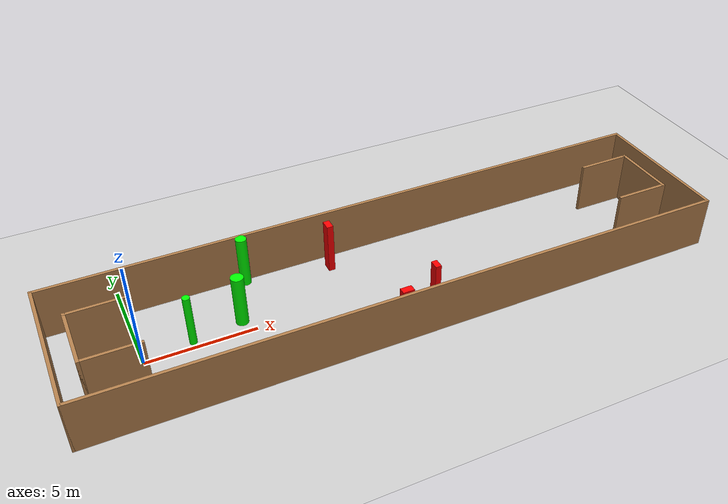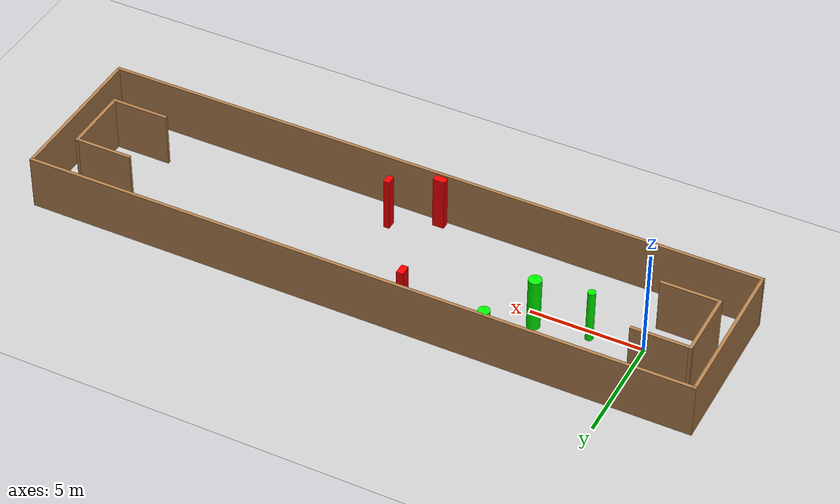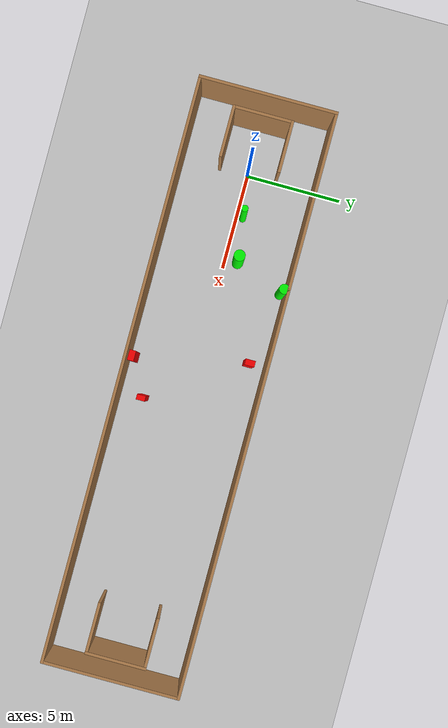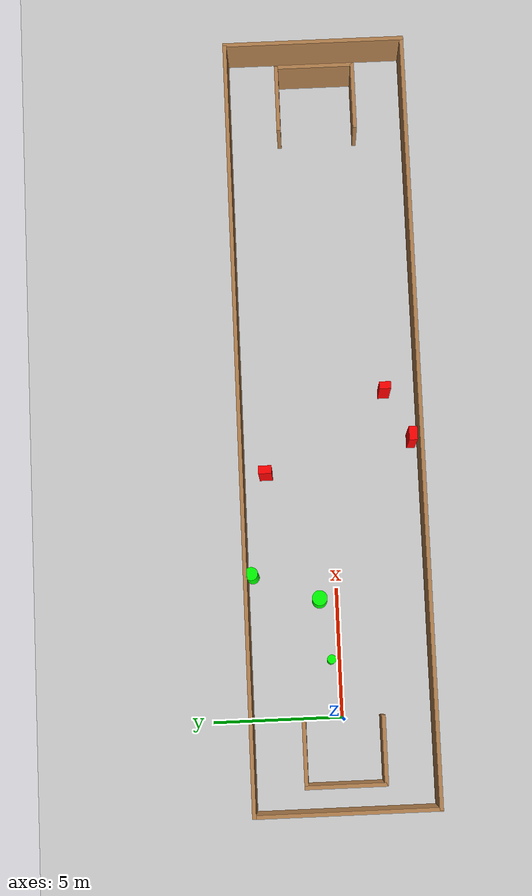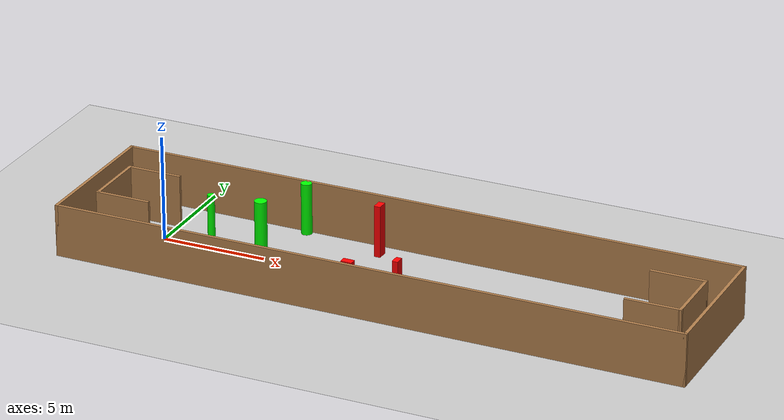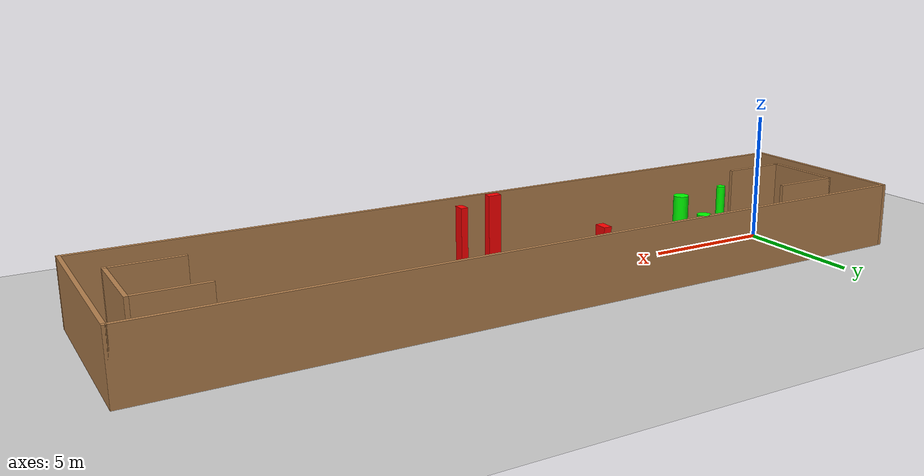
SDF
<sdf version="1.7">
 <world name="default">
  <light name="sun" type="directional">
   <pose>0 0 10 0 -0 0</pose>
   <diffuse>0.8 0.8 0.8 1</diffuse>
   <specular>0.2 0.2 0.2 1</specular>
   <attenuation>
    <range>1000</range>
    <constant>0.9</constant>
    <linear>0.01</linear>
    <quadratic>0.001</quadratic>
   </attenuation>
   <direction>-0.5 0.1 -0.9</direction>
   <spot><inner_angle>0</inner_angle><outer_angle>0</outer_angle><falloff>0</falloff></spot>
  </light>
  <model name="ground_plane">
   <static>1</static>
   <link name="link">
    <collision name="collision">
     <geometry><plane><normal>0 0 1</normal><size>100 100</size></plane></geometry>
     <surface>
      <contact><collide_bitmask>65535</collide_bitmask></contact>
      <friction><ode><mu>100</mu><mu2>50</mu2></ode></friction>
     </surface>
    </collision>
    <visual name="visual">
     <cast_shadows>0</cast_shadows>
     <geometry><plane><normal>0 0 1</normal><size>100 100</size></plane></geometry>
     <material>
      <script><uri>file://media/materials/scripts/gazebo.material</uri><name>Gazebo/Grey</name></script>
     </material>
    </visual>
   </link>
  </model>
  <gravity>0 0 -9.8</gravity>
  <magnetic_field>6e-06 2.3e-05 -4.2e-05</magnetic_field>
  <atmosphere type="adiabatic"/>
  <physics type="ode">
   <max_step_size>0.001</max_step_size>
   <real_time_factor>1</real_time_factor>
   <real_time_update_rate>1000</real_time_update_rate>
  </physics>
  <scene><ambient>0.4 0.4 0.4 1</ambient><background>0.7 0.7 0.7 1</background><shadows>1</shadows></scene>
  <spherical_coordinates>
   <surface_model>EARTH_WGS84</surface_model>
   <latitude_deg>0</latitude_deg>
   <longitude_deg>0</longitude_deg>
   <elevation>0</elevation>
   <heading_deg>0</heading_deg>
  </spherical_coordinates>
  <model name="my_base_walls">
   <link name="Wall_0">
    <collision name="Wall_0_Collision">
     <geometry><box><size>7.15 0.15 2.5</size></box></geometry>
     <pose>0 0 1.25 0 -0 0</pose>
    </collision>
    <visual name="Wall_0_Visual">
     <pose>0 0 1.25 0 -0 0</pose>
     <geometry><box><size>7.15 0.15 2.5</size></box></geometry>
     <material>
      <script><uri>file://media/materials/scripts/gazebo.material</uri><name>Gazebo/Wood</name></script>
      <ambient>1 1 1 1</ambient>
     </material>
     <meta><layer>0</layer></meta>
    </visual>
    <pose>-15 0 0 0 -0 1.5708</pose>
   </link>
   <link name="Wall_10">
    <collision name="Wall_10_Collision">
     <geometry><box><size>2.65 0.15 2.5</size></box></geometry>
     <pose>0 0 1.25 0 -0 0</pose>
    </collision>
    <visual name="Wall_10_Visual">
     <pose>0 0 1.25 0 -0 0</pose>
     <geometry><box><size>2.65 0.15 2.5</size></box></geometry>
     <material>
      <script><uri>file://media/materials/scripts/gazebo.material</uri><name>Gazebo/Wood</name></script>
      <ambient>1 1 1 1</ambient>
     </material>
     <meta><layer>0</layer></meta>
    </visual>
    <pose>-12.75 -1.5 0 0 -0 0</pose>
   </link>
   <link name="Wall_12">
    <collision name="Wall_12_Collision">
     <geometry><box><size>2.65 0.15 2.5</size></box></geometry>
     <pose>0 0 1.25 0 -0 0</pose>
    </collision>
    <visual name="Wall_12_Visual">
     <pose>0 0 1.25 0 -0 0</pose>
     <geometry><box><size>2.65 0.15 2.5</size></box></geometry>
     <material>
      <script><uri>file://media/materials/scripts/gazebo.material</uri><name>Gazebo/Wood</name></script>
      <ambient>1 1 1 1</ambient>
     </material>
     <meta><layer>0</layer></meta>
    </visual>
    <pose>-12.75 1.5 0 0 -0 0</pose>
   </link>
   <link name="Wall_14">
    <collision name="Wall_14_Collision">
     <geometry><box><size>3.15 0.15 2.5</size></box></geometry>
     <pose>0 0 1.25 0 -0 0</pose>
    </collision>
    <visual name="Wall_14_Visual">
     <pose>0 0 1.25 0 -0 0</pose>
     <geometry><box><size>3.15 0.15 2.5</size></box></geometry>
     <material>
      <script><uri>file://media/materials/scripts/gazebo.material</uri><name>Gazebo/Wood</name></script>
      <ambient>1 1 1 1</ambient>
     </material>
     <meta><layer>0</layer></meta>
    </visual>
    <pose>14 0 0 0 -0 -1.5708</pose>
   </link>
   <link name="Wall_15">
    <collision name="Wall_15_Collision">
     <geometry><box><size>2.65 0.15 2.5</size></box></geometry>
     <pose>0 0 1.25 0 -0 0</pose>
    </collision>
    <visual name="Wall_15_Visual">
     <pose>0 0 1.25 0 -0 0</pose>
     <geometry><box><size>2.65 0.15 2.5</size></box></geometry>
     <material>
      <script><uri>file://media/materials/scripts/gazebo.material</uri><name>Gazebo/Wood</name></script>
      <ambient>1 1 1 1</ambient>
     </material>
     <meta><layer>0</layer></meta>
    </visual>
    <pose>12.75 -1.5 0 0 -0 3.14159</pose>
   </link>
   <link name="Wall_17">
    <collision name="Wall_17_Collision">
     <geometry><box><size>2.65 0.15 2.5</size></box></geometry>
     <pose>0 0 1.25 0 -0 0</pose>
    </collision>
    <visual name="Wall_17_Visual">
     <pose>0 0 1.25 0 -0 0</pose>
     <geometry><box><size>2.65 0.15 2.5</size></box></geometry>
     <material>
      <script><uri>file://media/materials/scripts/gazebo.material</uri><name>Gazebo/Wood</name></script>
      <ambient>1 1 1 1</ambient>
     </material>
     <meta><layer>0</layer></meta>
    </visual>
    <pose>12.75 1.5 0 0 -0 3.14159</pose>
   </link>
   <link name="Wall_2">
    <collision name="Wall_2_Collision">
     <geometry><box><size>30.15 0.15 2.5</size></box></geometry>
     <pose>0 0 1.25 0 -0 0</pose>
    </collision>
    <visual name="Wall_2_Visual">
     <pose>0 0 1.25 0 -0 0</pose>
     <geometry><box><size>30.15 0.15 2.5</size></box></geometry>
     <material>
      <script><uri>file://media/materials/scripts/gazebo.material</uri><name>Gazebo/Wood</name></script>
      <ambient>1 1 1 1</ambient>
     </material>
     <meta><layer>0</layer></meta>
    </visual>
    <pose>-0 -3.5 0 0 -0 0</pose>
   </link>
   <link name="Wall_4">
    <collision name="Wall_4_Collision">
     <geometry><box><size>30.15 0.15 2.5</size></box></geometry>
     <pose>0 0 1.25 0 -0 0</pose>
    </collision>
    <visual name="Wall_4_Visual">
     <pose>0 0 1.25 0 -0 0</pose>
     <geometry><box><size>30.15 0.15 2.5</size></box></geometry>
     <material>
      <script><uri>file://media/materials/scripts/gazebo.material</uri><name>Gazebo/Wood</name></script>
      <ambient>1 1 1 1</ambient>
     </material>
     <meta><layer>0</layer></meta>
    </visual>
    <pose>-0 3.5 0 0 -0 0</pose>
   </link>
   <link name="Wall_6">
    <collision name="Wall_6_Collision">
     <geometry><box><size>7.15 0.15 2.5</size></box></geometry>
     <pose>0 0 1.25 0 -0 0</pose>
    </collision>
    <visual name="Wall_6_Visual">
     <pose>0 0 1.25 0 -0 0</pose>
     <geometry><box><size>7.15 0.15 2.5</size></box></geometry>
     <material>
      <script><uri>file://media/materials/scripts/gazebo.material</uri><name>Gazebo/Wood</name></script>
      <ambient>1 1 1 1</ambient>
     </material>
     <meta><layer>0</layer></meta>
    </visual>
    <pose>15 0 0 0 -0 -1.5708</pose>
   </link>
   <link name="Wall_9">
    <collision name="Wall_9_Collision">
     <geometry><box><size>3.15 0.15 2.5</size></box></geometry>
     <pose>0 0 1.25 0 -0 0</pose>
    </collision>
    <visual name="Wall_9_Visual">
     <pose>0 0 1.25 0 -0 0</pose>
     <geometry><box><size>3.15 0.15 2.5</size></box></geometry>
     <material>
      <script><uri>file://media/materials/scripts/gazebo.material</uri><name>Gazebo/Wood</name></script>
      <ambient>1 1 1 1</ambient>
     </material>
     <meta><layer>0</layer></meta>
    </visual>
    <pose>-14 0 0 0 -0 -1.5708</pose>
   </link>
   <static>1</static>
   <pose>11.5 0 0 0 -0 0</pose>
  </model>
  <model name="cylinder1">
   <static>1</static>
   <link name="link">
    <inertial>
     <mass>1</mass>
     <inertia><ixx>0.5</ixx><ixy>0</ixy><ixz>0</ixz><iyy>0.5</iyy><iyz>0</iyz><izz>1</izz></inertia>
    </inertial>
    <collision name="collision">
     <geometry><cylinder><radius>0.29025084212623015</radius><length>2.5</length></cylinder></geometry>
    </collision>
    <visual name="visual">
     <geometry><cylinder><radius>0.29025084212623015</radius><length>2.5</length></cylinder></geometry>
     <material>
      <ambient>0 1 0 1</ambient>
      <diffuse>0 1 0 1</diffuse>
      <specular>0.1 0.1 0.1 1</specular>
      <emissive>0 0 0 0</emissive>
     </material>
    </visual>
   </link>
   <pose>4.549957141596188 0.6942653468361275 1.25 0 0 0</pose>
  </model>
  <model name="cylinder2">
   <static>1</static>
   <link name="link">
    <inertial>
     <mass>1</mass>
     <inertia><ixx>0.5</ixx><ixy>0</ixy><ixz>0</ixz><iyy>0.5</iyy><iyz>0</iyz><izz>1</izz></inertia>
    </inertial>
    <collision name="collision">
     <geometry><cylinder><radius>0.1716616387535668</radius><length>2.5</length></cylinder></geometry>
    </collision>
    <visual name="visual">
     <geometry><cylinder><radius>0.1716616387535668</radius><length>2.5</length></cylinder></geometry>
     <material>
      <ambient>0 1 0 1</ambient>
      <diffuse>0 1 0 1</diffuse>
      <specular>0.1 0.1 0.1 1</specular>
      <emissive>0 0 0 0</emissive>
     </material>
    </visual>
   </link>
   <pose>2.233057944341299 0.3417769200149863 1.25 0 0 0</pose>
  </model>
  <model name="cylinder3">
   <static>1</static>
   <link name="link">
    <inertial>
     <mass>1</mass>
     <inertia><ixx>0.5</ixx><ixy>0</ixy><ixz>0</ixz><iyy>0.5</iyy><iyz>0</iyz><izz>1</izz></inertia>
    </inertial>
    <collision name="collision">
     <geometry><cylinder><radius>0.25590427104143776</radius><length>2.5</length></cylinder></geometry>
    </collision>
    <visual name="visual">
     <geometry><cylinder><radius>0.25590427104143776</radius><length>2.5</length></cylinder></geometry>
     <material>
      <ambient>0 1 0 1</ambient>
      <diffuse>0 1 0 1</diffuse>
      <specular>0.1 0.1 0.1 1</specular>
      <emissive>0 0 0 0</emissive>
     </material>
    </visual>
   </link>
   <pose>5.575741564250723 3.261801996946276 1.25 0 0 0</pose>
  </model>
  <model name="box1">
   <static>1</static>
   <link name="link">
    <inertial>
     <mass>1</mass>
     <inertia><ixx>0.083</ixx><ixy>0</ixy><ixz>0</ixz><iyy>0.083</iyy><iyz>0</iyz><izz>0.083</izz></inertia>
    </inertial>
    <collision name="collision">
     <geometry><box><size>0.30570605794348416 0.5063906872050276 2.5</size></box></geometry>
    </collision>
    <visual name="visual">
     <geometry><box><size>0.30570605794348416 0.5063906872050276 2.5</size></box></geometry>
     <material>
      <ambient>1 0 0 1</ambient>
      <diffuse>1 0 0 1</diffuse>
      <specular>0.1 0.1 0.1 1</specular>
      <emissive>0 0 0 0</emissive>
     </material>
    </visual>
    <sensor name="my_contact" type="contact">
     <contact><collision>box_collision</collision><topic>__default_topic__</topic></contact>
    </sensor>
   </link>
   <pose>9.539894793127747 2.5826341990372397 1.25 0 0 0</pose>
  </model>
  <model name="box2">
   <static>1</static>
   <link name="link">
    <inertial>
     <mass>1</mass>
     <inertia><ixx>0.083</ixx><ixy>0</ixy><ixz>0</ixz><iyy>0.083</iyy><iyz>0</iyz><izz>0.083</izz></inertia>
    </inertial>
    <collision name="collision">
     <geometry><box><size>0.27407841326037496 0.44796188789972907 2.5</size></box></geometry>
    </collision>
    <visual name="visual">
     <geometry><box><size>0.27407841326037496 0.44796188789972907 2.5</size></box></geometry>
     <material>
      <ambient>1 0 0 1</ambient>
      <diffuse>1 0 0 1</diffuse>
      <specular>0.1 0.1 0.1 1</specular>
      <emissive>0 0 0 0</emissive>
     </material>
    </visual>
    <sensor name="my_contact" type="contact">
     <contact><collision>box_collision</collision><topic>__default_topic__</topic></contact>
    </sensor>
   </link>
   <pose>12.613826607813468 -2.1834212920138882 1.25 0 0 0</pose>
  </model>
  <model name="box3">
   <static>1</static>
   <link name="link">
    <inertial>
     <mass>1</mass>
     <inertia><ixx>0.083</ixx><ixy>0</ixy><ixz>0</ixz><iyy>0.083</iyy><iyz>0</iyz><izz>0.083</izz></inertia>
    </inertial>
    <collision name="collision">
     <geometry><box><size>0.5313811379889711 0.32193714041928334 2.5</size></box></geometry>
    </collision>
    <visual name="visual">
     <geometry><box><size>0.5313811379889711 0.32193714041928334 2.5</size></box></geometry>
     <material>
      <ambient>1 0 0 1</ambient>
      <diffuse>1 0 0 1</diffuse>
      <specular>0.1 0.1 0.1 1</specular>
      <emissive>0 0 0 0</emissive>
     </material>
    </visual>
    <sensor name="my_contact" type="contact">
     <contact><collision>box_collision</collision><topic>__default_topic__</topic></contact>
    </sensor>
   </link>
   <pose>10.710077289452476 -3.173139997765224 1.25 0 0 0</pose>
  </model>
 </world>
</sdf>
